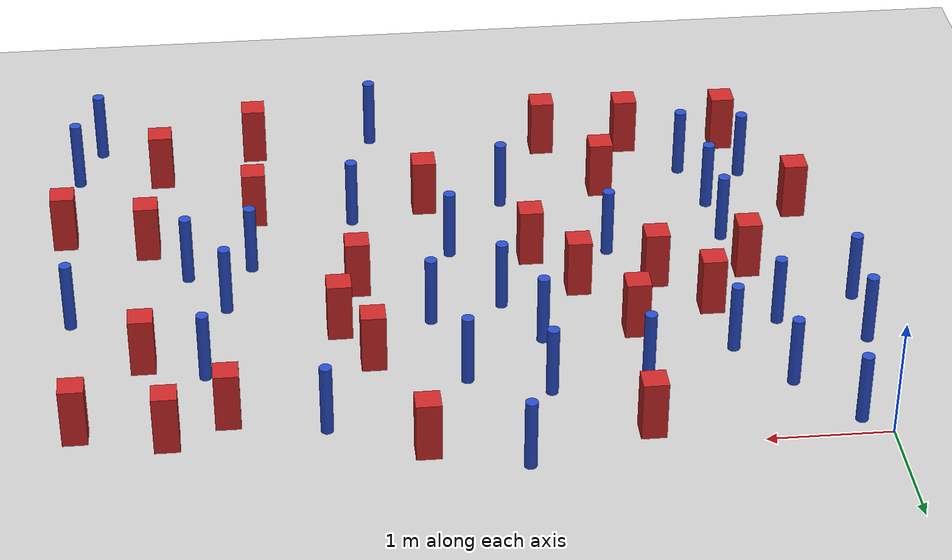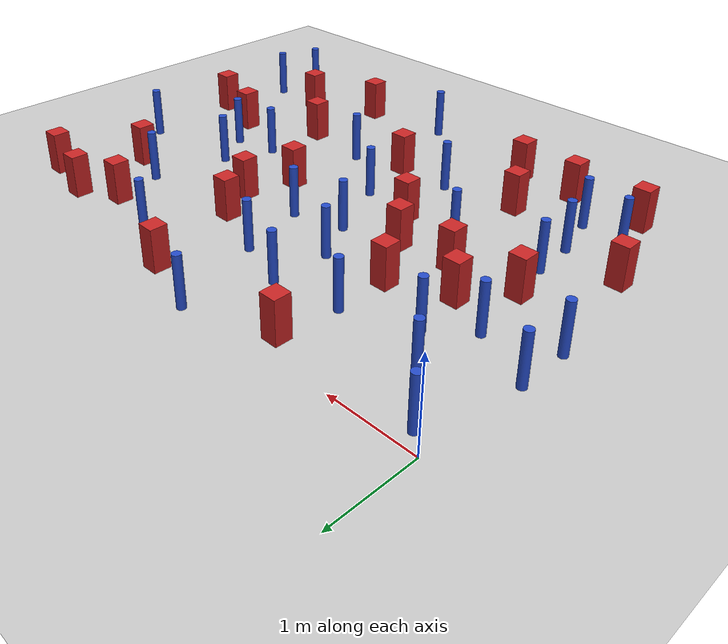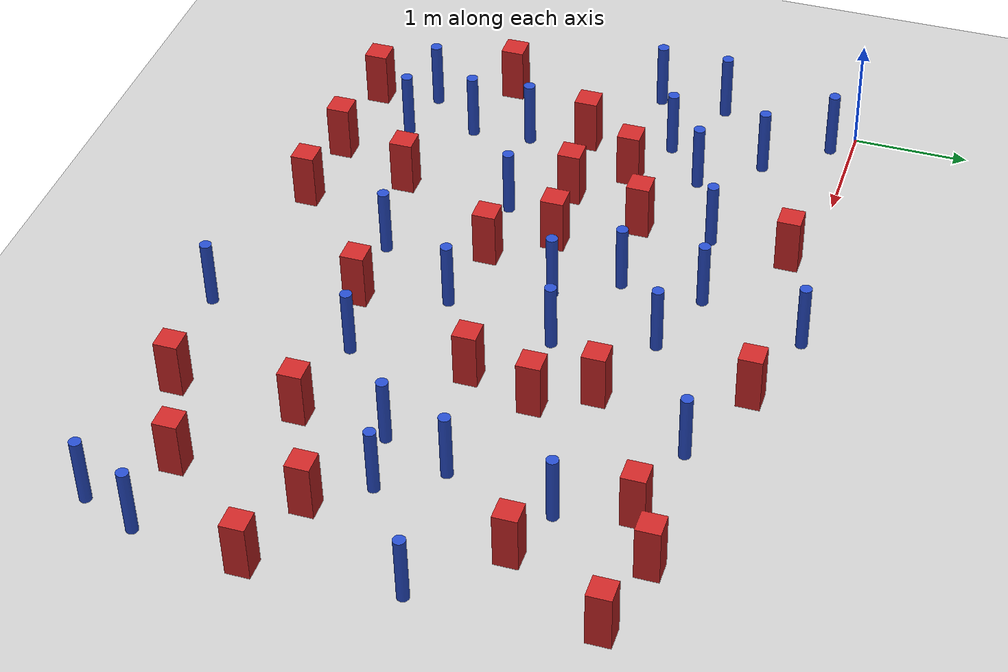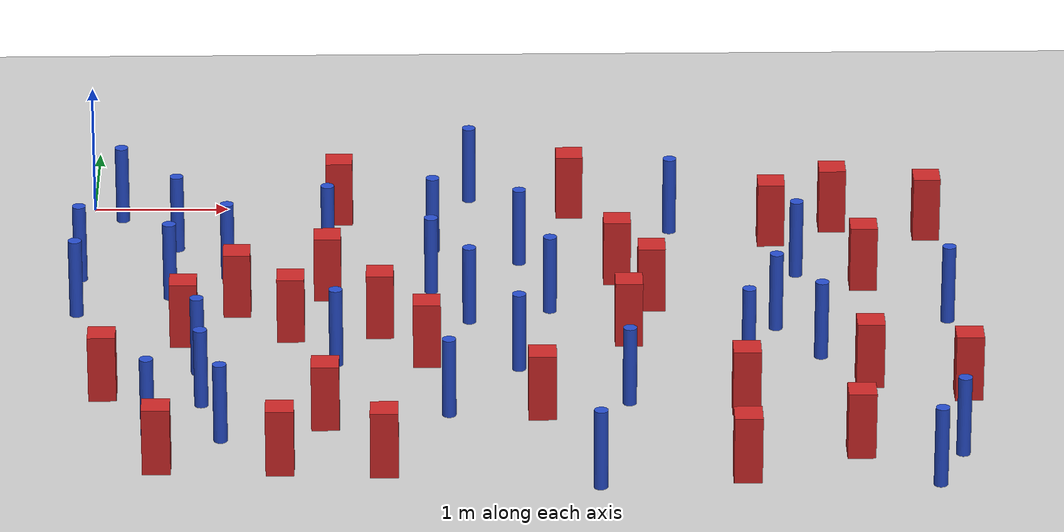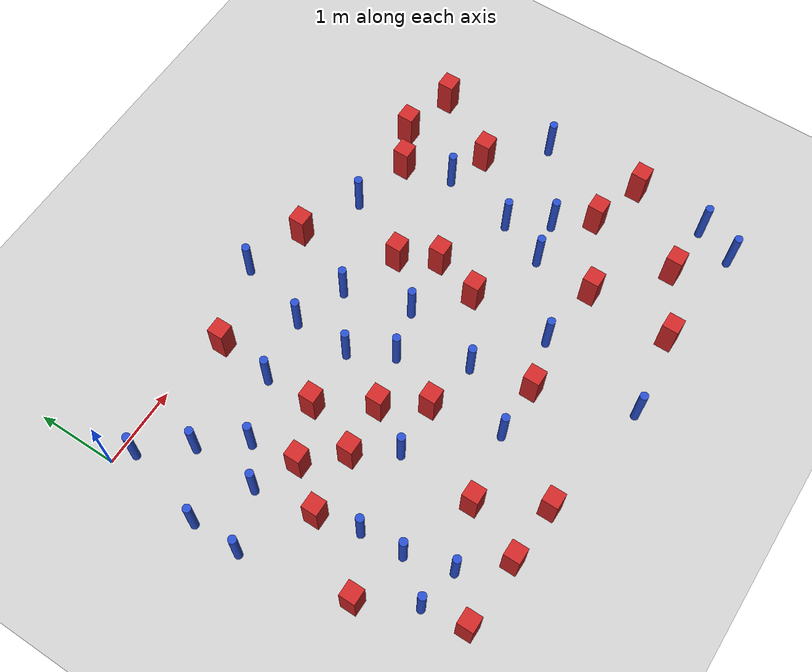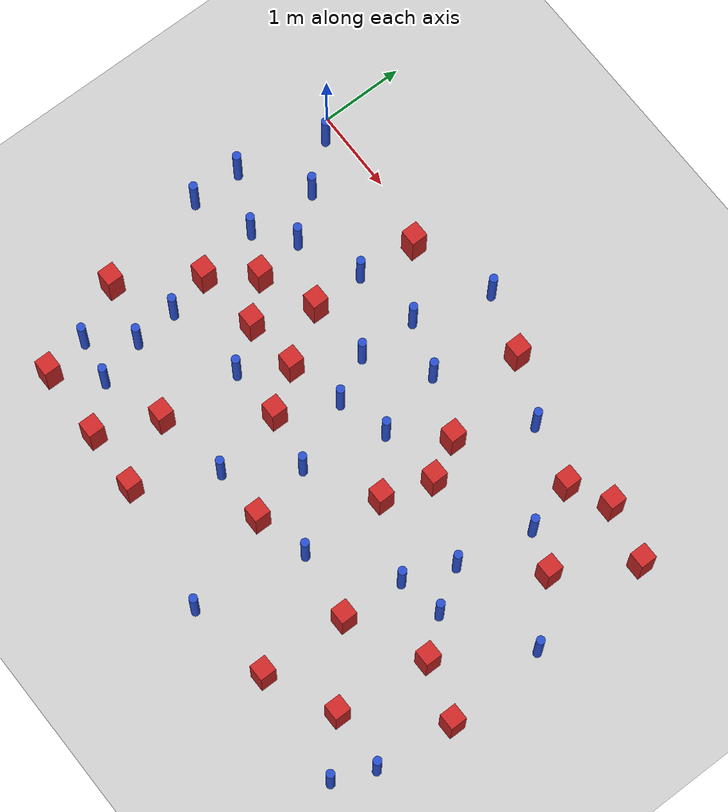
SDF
<sdf version="1.6">
 <world name="default">
  <model name="ground_plane">
   <static>1</static>
   <link name="link">
    <collision name="collision">
     <geometry><plane><normal>0 0 1</normal><size>100 100</size></plane></geometry>
     <surface><friction><ode><mu>100</mu><mu2>50</mu2></ode></friction></surface>
    </collision>
    <visual name="visual">
     <cast_shadows>0</cast_shadows>
     <geometry><plane><normal>0 0 1</normal><size>100 100</size></plane></geometry>
     <material>
      <ambient>1.0 1.0 1.0 1.0</ambient>
      <diffuse>0.8 0.8 0.8 1.0</diffuse>
      <specular>0.01 0.01 0.01 1.000000</specular>
     </material>
    </visual>
   </link>
  </model>
  <model name="NamedLocations">
   <static>true</static>
   <link name="DefaultStart"><pose>8.5 0 0 0 0 3.14</pose></link>
  </model>
  <model name="pole_obstacle7">
   <static>true</static>
   <pose>0.609855262946 -1.5420359486 -9.47619616065e-06 5.49618799738e-07 2.36310414061e-07 -1.55090534801e-07</pose>
   <link name="link">
    <pose>0 0 0.3 0 -0 0</pose>
    <inertial>
     <mass>1</mass>
     <inertia><ixx>0.145833</ixx><ixy>0</ixy><ixz>0</ixz><iyy>0.145833</iyy><iyz>0</iyz><izz>0.125</izz></inertia>
    </inertial>
    <collision name="collision">
     <geometry><cylinder><radius>0.05</radius><length>.6</length></cylinder></geometry>
    </collision>
    <visual name="visual">
     <geometry><cylinder><radius>0.05</radius><length>.6</length></cylinder></geometry>
     <material>
      <script><name>Gazebo/Blue</name><uri>file://media/materials/scripts/gazebo.material</uri></script>
     </material>
    </visual>
   </link>
  </model>
  <model name="pole_obstacle8">
   <static>true</static>
   <pose>4.32344856994 -0.441403326648 -9.47619616065e-06 5.49618799737e-07 2.36310414057e-07 -1.55090534802e-07</pose>
   <link name="link">
    <pose>0 0 0.3 0 -0 0</pose>
    <inertial>
     <mass>1</mass>
     <inertia><ixx>0.145833</ixx><ixy>0</ixy><ixz>0</ixz><iyy>0.145833</iyy><iyz>0</iyz><izz>0.125</izz></inertia>
    </inertial>
    <collision name="collision">
     <geometry><cylinder><radius>0.05</radius><length>.6</length></cylinder></geometry>
    </collision>
    <visual name="visual">
     <geometry><cylinder><radius>0.05</radius><length>.6</length></cylinder></geometry>
     <material>
      <script><name>Gazebo/Blue</name><uri>file://media/materials/scripts/gazebo.material</uri></script>
     </material>
    </visual>
   </link>
  </model>
  <model name="square_post_obstacle31">
   <static>true</static>
   <pose>5.68053538804 -3.01596395985 -6.11067671241e-07 -5.50515727128e-06 -8.79689657224e-07 2.37013304536e-05</pose>
   <link name="link">
    <pose>0 0 0.25 0 -0 0</pose>
    <inertial>
     <mass>100</mass>
     <inertia>
      <ixx>0.166667</ixx>
      <ixy>0</ixy>
      <ixz>0</ixz>
      <iyy>0.166667</iyy>
      <iyz>0</iyz>
      <izz>0.166667</izz>
     </inertia>
    </inertial>
    <collision name="collision"><geometry><box><size>.2 .2 .5</size></box></geometry></collision>
    <visual name="visual">
     <geometry><box><size>.2 .2 .5</size></box></geometry>
     <material>
      <script><name>Gazebo/Red</name><uri>file://media/materials/scripts/gazebo.material</uri></script>
     </material>
    </visual>
   </link>
  </model>
  <model name="square_post_obstacle34">
   <static>true</static>
   <pose>2.4981034423 -2.64403837238 -6.11067671241e-07 -5.50515727128e-06 -8.79689657224e-07 2.37013304536e-05</pose>
   <link name="link">
    <pose>0 0 0.25 0 -0 0</pose>
    <inertial>
     <mass>100</mass>
     <inertia>
      <ixx>0.166667</ixx>
      <ixy>0</ixy>
      <ixz>0</ixz>
      <iyy>0.166667</iyy>
      <iyz>0</iyz>
      <izz>0.166667</izz>
     </inertia>
    </inertial>
    <collision name="collision"><geometry><box><size>.2 .2 .5</size></box></geometry></collision>
    <visual name="visual">
     <geometry><box><size>.2 .2 .5</size></box></geometry>
     <material>
      <script><name>Gazebo/Red</name><uri>file://media/materials/scripts/gazebo.material</uri></script>
     </material>
    </visual>
   </link>
  </model>
  <model name="pole_obstacle30">
   <static>true</static>
   <pose>6.31175992015 -2.01101661606 -9.47619616065e-06 5.49618799737e-07 2.36310414063e-07 -1.55090534798e-07</pose>
   <link name="link">
    <pose>0 0 0.3 0 -0 0</pose>
    <inertial>
     <mass>1</mass>
     <inertia><ixx>0.145833</ixx><ixy>0</ixy><ixz>0</ixz><iyy>0.145833</iyy><iyz>0</iyz><izz>0.125</izz></inertia>
    </inertial>
    <collision name="collision">
     <geometry><cylinder><radius>0.05</radius><length>.6</length></cylinder></geometry>
    </collision>
    <visual name="visual">
     <geometry><cylinder><radius>0.05</radius><length>.6</length></cylinder></geometry>
     <material>
      <script><name>Gazebo/Blue</name><uri>file://media/materials/scripts/gazebo.material</uri></script>
     </material>
    </visual>
   </link>
  </model>
  <model name="square_post_obstacle37">
   <static>true</static>
   <pose>4.73826723417 -4.49922319238 -6.11067671241e-07 -5.50515727128e-06 -8.79689657224e-07 2.37013304536e-05</pose>
   <link name="link">
    <pose>0 0 0.25 0 -0 0</pose>
    <inertial>
     <mass>100</mass>
     <inertia>
      <ixx>0.166667</ixx>
      <ixy>0</ixy>
      <ixz>0</ixz>
      <iyy>0.166667</iyy>
      <iyz>0</iyz>
      <izz>0.166667</izz>
     </inertia>
    </inertial>
    <collision name="collision"><geometry><box><size>.2 .2 .5</size></box></geometry></collision>
    <visual name="visual">
     <geometry><box><size>.2 .2 .5</size></box></geometry>
     <material>
      <script><name>Gazebo/Red</name><uri>file://media/materials/scripts/gazebo.material</uri></script>
     </material>
    </visual>
   </link>
  </model>
  <model name="square_post_obstacle38">
   <static>true</static>
   <pose>0.731146983215 -2.28590044936 -6.11067671241e-07 -5.50515727128e-06 -8.79689657224e-07 2.37013304536e-05</pose>
   <link name="link">
    <pose>0 0 0.25 0 -0 0</pose>
    <inertial>
     <mass>100</mass>
     <inertia>
      <ixx>0.166667</ixx>
      <ixy>0</ixy>
      <ixz>0</ixz>
      <iyy>0.166667</iyy>
      <iyz>0</iyz>
      <izz>0.166667</izz>
     </inertia>
    </inertial>
    <collision name="collision"><geometry><box><size>.2 .2 .5</size></box></geometry></collision>
    <visual name="visual">
     <geometry><box><size>.2 .2 .5</size></box></geometry>
     <material>
      <script><name>Gazebo/Red</name><uri>file://media/materials/scripts/gazebo.material</uri></script>
     </material>
    </visual>
   </link>
  </model>
  <model name="pole_obstacle44">
   <static>true</static>
   <pose>3.18867789257 -0.979405532378 -9.47619616065e-06 5.49618799737e-07 2.36310414076e-07 -1.55090534793e-07</pose>
   <link name="link">
    <pose>0 0 0.3 0 -0 0</pose>
    <inertial>
     <mass>1</mass>
     <inertia><ixx>0.145833</ixx><ixy>0</ixy><ixz>0</ixz><iyy>0.145833</iyy><iyz>0</iyz><izz>0.125</izz></inertia>
    </inertial>
    <collision name="collision">
     <geometry><cylinder><radius>0.05</radius><length>.6</length></cylinder></geometry>
    </collision>
    <visual name="visual">
     <geometry><cylinder><radius>0.05</radius><length>.6</length></cylinder></geometry>
     <material>
      <script><name>Gazebo/Blue</name><uri>file://media/materials/scripts/gazebo.material</uri></script>
     </material>
    </visual>
   </link>
  </model>
  <model name="square_post_obstacle43">
   <static>true</static>
   <pose>5.07543583133 -0.621471444825 -6.11067671241e-07 -5.50515727128e-06 -8.79689657224e-07 2.37013304536e-05</pose>
   <link name="link">
    <pose>0 0 0.25 0 -0 0</pose>
    <inertial>
     <mass>100</mass>
     <inertia>
      <ixx>0.166667</ixx>
      <ixy>0</ixy>
      <ixz>0</ixz>
      <iyy>0.166667</iyy>
      <iyz>0</iyz>
      <izz>0.166667</izz>
     </inertia>
    </inertial>
    <collision name="collision"><geometry><box><size>.2 .2 .5</size></box></geometry></collision>
    <visual name="visual">
     <geometry><box><size>.2 .2 .5</size></box></geometry>
     <material>
      <script><name>Gazebo/Red</name><uri>file://media/materials/scripts/gazebo.material</uri></script>
     </material>
    </visual>
   </link>
  </model>
  <model name="square_post_obstacle44">
   <static>true</static>
   <pose>1.10983998137 -1.78856618563 -6.11067671241e-07 -5.50515727128e-06 -8.79689657224e-07 2.37013304536e-05</pose>
   <link name="link">
    <pose>0 0 0.25 0 -0 0</pose>
    <inertial>
     <mass>100</mass>
     <inertia>
      <ixx>0.166667</ixx>
      <ixy>0</ixy>
      <ixz>0</ixz>
      <iyy>0.166667</iyy>
      <iyz>0</iyz>
      <izz>0.166667</izz>
     </inertia>
    </inertial>
    <collision name="collision"><geometry><box><size>.2 .2 .5</size></box></geometry></collision>
    <visual name="visual">
     <geometry><box><size>.2 .2 .5</size></box></geometry>
     <material>
      <script><name>Gazebo/Red</name><uri>file://media/materials/scripts/gazebo.material</uri></script>
     </material>
    </visual>
   </link>
  </model>
  <model name="square_post_obstacle47">
   <static>true</static>
   <pose>3.31877109479 -3.49733908401 -6.11067671241e-07 -5.50515727128e-06 -8.79689657224e-07 2.37013304536e-05</pose>
   <link name="link">
    <pose>0 0 0.25 0 -0 0</pose>
    <inertial>
     <mass>100</mass>
     <inertia>
      <ixx>0.166667</ixx>
      <ixy>0</ixy>
      <ixz>0</ixz>
      <iyy>0.166667</iyy>
      <iyz>0</iyz>
      <izz>0.166667</izz>
     </inertia>
    </inertial>
    <collision name="collision"><geometry><box><size>.2 .2 .5</size></box></geometry></collision>
    <visual name="visual">
     <geometry><box><size>.2 .2 .5</size></box></geometry>
     <material>
      <script><name>Gazebo/Red</name><uri>file://media/materials/scripts/gazebo.material</uri></script>
     </material>
    </visual>
   </link>
  </model>
  <model name="pole_obstacle46">
   <static>true</static>
   <pose>5.0472588109 -2.11889670049 -9.47619616065e-06 5.49618799738e-07 2.36310414051e-07 -1.55090534805e-07</pose>
   <link name="link">
    <pose>0 0 0.3 0 -0 0</pose>
    <inertial>
     <mass>1</mass>
     <inertia><ixx>0.145833</ixx><ixy>0</ixy><ixz>0</ixz><iyy>0.145833</iyy><iyz>0</iyz><izz>0.125</izz></inertia>
    </inertial>
    <collision name="collision">
     <geometry><cylinder><radius>0.05</radius><length>.6</length></cylinder></geometry>
    </collision>
    <visual name="visual">
     <geometry><cylinder><radius>0.05</radius><length>.6</length></cylinder></geometry>
     <material>
      <script><name>Gazebo/Blue</name><uri>file://media/materials/scripts/gazebo.material</uri></script>
     </material>
    </visual>
   </link>
  </model>
  <model name="square_post_obstacle53">
   <static>true</static>
   <pose>3.96643764946 -2.31050618533 -6.11067671241e-07 -5.50515727128e-06 -8.79689657224e-07 2.37013304536e-05</pose>
   <link name="link">
    <pose>0 0 0.25 0 -0 0</pose>
    <inertial>
     <mass>100</mass>
     <inertia>
      <ixx>0.166667</ixx>
      <ixy>0</ixy>
      <ixz>0</ixz>
      <iyy>0.166667</iyy>
      <iyz>0</iyz>
      <izz>0.166667</izz>
     </inertia>
    </inertial>
    <collision name="collision"><geometry><box><size>.2 .2 .5</size></box></geometry></collision>
    <visual name="visual">
     <geometry><box><size>.2 .2 .5</size></box></geometry>
     <material>
      <script><name>Gazebo/Red</name><uri>file://media/materials/scripts/gazebo.material</uri></script>
     </material>
    </visual>
   </link>
  </model>
  <model name="pole_obstacle55">
   <static>true</static>
   <pose>2.54694682827 -0.761549903889 -9.47619616065e-06 5.49618799738e-07 2.36310414075e-07 -1.55090534793e-07</pose>
   <link name="link">
    <pose>0 0 0.3 0 -0 0</pose>
    <inertial>
     <mass>1</mass>
     <inertia><ixx>0.145833</ixx><ixy>0</ixy><ixz>0</ixz><iyy>0.145833</iyy><iyz>0</iyz><izz>0.125</izz></inertia>
    </inertial>
    <collision name="collision">
     <geometry><cylinder><radius>0.05</radius><length>.6</length></cylinder></geometry>
    </collision>
    <visual name="visual">
     <geometry><cylinder><radius>0.05</radius><length>.6</length></cylinder></geometry>
     <material>
      <script><name>Gazebo/Blue</name><uri>file://media/materials/scripts/gazebo.material</uri></script>
     </material>
    </visual>
   </link>
  </model>
  <model name="pole_obstacle61">
   <static>true</static>
   <pose>1.84176958088 -2.67129326629 -9.47619616065e-06 5.49618799737e-07 2.36310414062e-07 -1.55090534798e-07</pose>
   <link name="link">
    <pose>0 0 0.3 0 -0 0</pose>
    <inertial>
     <mass>1</mass>
     <inertia><ixx>0.145833</ixx><ixy>0</ixy><ixz>0</ixz><iyy>0.145833</iyy><iyz>0</iyz><izz>0.125</izz></inertia>
    </inertial>
    <collision name="collision">
     <geometry><cylinder><radius>0.05</radius><length>.6</length></cylinder></geometry>
    </collision>
    <visual name="visual">
     <geometry><cylinder><radius>0.05</radius><length>.6</length></cylinder></geometry>
     <material>
      <script><name>Gazebo/Blue</name><uri>file://media/materials/scripts/gazebo.material</uri></script>
     </material>
    </visual>
   </link>
  </model>
  <model name="pole_obstacle64">
   <static>true</static>
   <pose>0.213586144083 -0.184721934565 -9.47619616065e-06 5.49618799737e-07 2.36310414051e-07 -1.55090534804e-07</pose>
   <link name="link">
    <pose>0 0 0.3 0 -0 0</pose>
    <inertial>
     <mass>1</mass>
     <inertia><ixx>0.145833</ixx><ixy>0</ixy><ixz>0</ixz><iyy>0.145833</iyy><iyz>0</iyz><izz>0.125</izz></inertia>
    </inertial>
    <collision name="collision">
     <geometry><cylinder><radius>0.05</radius><length>.6</length></cylinder></geometry>
    </collision>
    <visual name="visual">
     <geometry><cylinder><radius>0.05</radius><length>.6</length></cylinder></geometry>
     <material>
      <script><name>Gazebo/Blue</name><uri>file://media/materials/scripts/gazebo.material</uri></script>
     </material>
    </visual>
   </link>
  </model>
  <model name="pole_obstacle66">
   <static>true</static>
   <pose>5.23745996027 -1.21680901563 -9.47619616065e-06 5.49618799738e-07 2.36310414071e-07 -1.55090534796e-07</pose>
   <link name="link">
    <pose>0 0 0.3 0 -0 0</pose>
    <inertial>
     <mass>1</mass>
     <inertia><ixx>0.145833</ixx><ixy>0</ixy><ixz>0</ixz><iyy>0.145833</iyy><iyz>0</iyz><izz>0.125</izz></inertia>
    </inertial>
    <collision name="collision">
     <geometry><cylinder><radius>0.05</radius><length>.6</length></cylinder></geometry>
    </collision>
    <visual name="visual">
     <geometry><cylinder><radius>0.05</radius><length>.6</length></cylinder></geometry>
     <material>
      <script><name>Gazebo/Blue</name><uri>file://media/materials/scripts/gazebo.material</uri></script>
     </material>
    </visual>
   </link>
  </model>
  <model name="square_post_obstacle70">
   <static>true</static>
   <pose>5.55474291789 -4.13239678293 -6.11067671241e-07 -5.50515727128e-06 -8.79689657224e-07 2.37013304536e-05</pose>
   <link name="link">
    <pose>0 0 0.25 0 -0 0</pose>
    <inertial>
     <mass>100</mass>
     <inertia>
      <ixx>0.166667</ixx>
      <ixy>0</ixy>
      <ixz>0</ixz>
      <iyy>0.166667</iyy>
      <iyz>0</iyz>
      <izz>0.166667</izz>
     </inertia>
    </inertial>
    <collision name="collision"><geometry><box><size>.2 .2 .5</size></box></geometry></collision>
    <visual name="visual">
     <geometry><box><size>.2 .2 .5</size></box></geometry>
     <material>
      <script><name>Gazebo/Red</name><uri>file://media/materials/scripts/gazebo.material</uri></script>
     </material>
    </visual>
   </link>
  </model>
  <model name="pole_obstacle67">
   <static>true</static>
   <pose>5.35334237321 -2.59758577537 -9.47619616065e-06 5.49618799738e-07 2.36310414051e-07 -1.55090534805e-07</pose>
   <link name="link">
    <pose>0 0 0.3 0 -0 0</pose>
    <inertial>
     <mass>1</mass>
     <inertia><ixx>0.145833</ixx><ixy>0</ixy><ixz>0</ixz><iyy>0.145833</iyy><iyz>0</iyz><izz>0.125</izz></inertia>
    </inertial>
    <collision name="collision">
     <geometry><cylinder><radius>0.05</radius><length>.6</length></cylinder></geometry>
    </collision>
    <visual name="visual">
     <geometry><cylinder><radius>0.05</radius><length>.6</length></cylinder></geometry>
     <material>
      <script><name>Gazebo/Blue</name><uri>file://media/materials/scripts/gazebo.material</uri></script>
     </material>
    </visual>
   </link>
  </model>
  <model name="pole_obstacle69">
   <static>true</static>
   <pose>4.82320613418 -2.69890092054 -9.47619616065e-06 5.49618799738e-07 2.36310414051e-07 -1.55090534805e-07</pose>
   <link name="link">
    <pose>0 0 0.3 0 -0 0</pose>
    <inertial>
     <mass>1</mass>
     <inertia><ixx>0.145833</ixx><ixy>0</ixy><ixz>0</ixz><iyy>0.145833</iyy><iyz>0</iyz><izz>0.125</izz></inertia>
    </inertial>
    <collision name="collision">
     <geometry><cylinder><radius>0.05</radius><length>.6</length></cylinder></geometry>
    </collision>
    <visual name="visual">
     <geometry><cylinder><radius>0.05</radius><length>.6</length></cylinder></geometry>
     <material>
      <script><name>Gazebo/Blue</name><uri>file://media/materials/scripts/gazebo.material</uri></script>
     </material>
    </visual>
   </link>
  </model>
  <model name="pole_obstacle70">
   <static>true</static>
   <pose>0.882950663695 -3.3201823119 -9.47619616065e-06 5.49618799737e-07 2.36310414066e-07 -1.55090534797e-07</pose>
   <link name="link">
    <pose>0 0 0.3 0 -0 0</pose>
    <inertial>
     <mass>1</mass>
     <inertia><ixx>0.145833</ixx><ixy>0</ixy><ixz>0</ixz><iyy>0.145833</iyy><iyz>0</iyz><izz>0.125</izz></inertia>
    </inertial>
    <collision name="collision">
     <geometry><cylinder><radius>0.05</radius><length>.6</length></cylinder></geometry>
    </collision>
    <visual name="visual">
     <geometry><cylinder><radius>0.05</radius><length>.6</length></cylinder></geometry>
     <material>
      <script><name>Gazebo/Blue</name><uri>file://media/materials/scripts/gazebo.material</uri></script>
     </material>
    </visual>
   </link>
  </model>
  <model name="square_post_obstacle76">
   <static>true</static>
   <pose>5.54541185817 -0.379646621466 -6.11067671241e-07 -5.50515727128e-06 -8.79689657224e-07 2.37013304536e-05</pose>
   <link name="link">
    <pose>0 0 0.25 0 -0 0</pose>
    <inertial>
     <mass>100</mass>
     <inertia>
      <ixx>0.166667</ixx>
      <ixy>0</ixy>
      <ixz>0</ixz>
      <iyy>0.166667</iyy>
      <iyz>0</iyz>
      <izz>0.166667</izz>
     </inertia>
    </inertial>
    <collision name="collision"><geometry><box><size>.2 .2 .5</size></box></geometry></collision>
    <visual name="visual">
     <geometry><box><size>.2 .2 .5</size></box></geometry>
     <material>
      <script><name>Gazebo/Red</name><uri>file://media/materials/scripts/gazebo.material</uri></script>
     </material>
    </visual>
   </link>
  </model>
  <model name="pole_obstacle85">
   <static>true</static>
   <pose>3.40232198169 -1.80441585705 -9.47619616065e-06 5.49618799737e-07 2.36310414072e-07 -1.55090534793e-07</pose>
   <link name="link">
    <pose>0 0 0.3 0 -0 0</pose>
    <inertial>
     <mass>1</mass>
     <inertia><ixx>0.145833</ixx><ixy>0</ixy><ixz>0</ixz><iyy>0.145833</iyy><iyz>0</iyz><izz>0.125</izz></inertia>
    </inertial>
    <collision name="collision">
     <geometry><cylinder><radius>0.05</radius><length>.6</length></cylinder></geometry>
    </collision>
    <visual name="visual">
     <geometry><cylinder><radius>0.05</radius><length>.6</length></cylinder></geometry>
     <material>
      <script><name>Gazebo/Blue</name><uri>file://media/materials/scripts/gazebo.material</uri></script>
     </material>
    </visual>
   </link>
  </model>
  <model name="pole_obstacle94">
   <static>true</static>
   <pose>0.514895870694 -3.78690753344 -9.47619616065e-06 5.49618799737e-07 2.36310414069e-07 -1.55090534796e-07</pose>
   <link name="link">
    <pose>0 0 0.3 0 -0 0</pose>
    <inertial>
     <mass>1</mass>
     <inertia><ixx>0.145833</ixx><ixy>0</ixy><ixz>0</ixz><iyy>0.145833</iyy><iyz>0</iyz><izz>0.125</izz></inertia>
    </inertial>
    <collision name="collision">
     <geometry><cylinder><radius>0.05</radius><length>.6</length></cylinder></geometry>
    </collision>
    <visual name="visual">
     <geometry><cylinder><radius>0.05</radius><length>.6</length></cylinder></geometry>
     <material>
      <script><name>Gazebo/Blue</name><uri>file://media/materials/scripts/gazebo.material</uri></script>
     </material>
    </visual>
   </link>
  </model>
  <model name="square_post_obstacle85">
   <static>true</static>
   <pose>5.72316089182 -1.39629750474 -6.11067671241e-07 -5.50515727128e-06 -8.79689657224e-07 2.37013304536e-05</pose>
   <link name="link">
    <pose>0 0 0.25 0 -0 0</pose>
    <inertial>
     <mass>100</mass>
     <inertia>
      <ixx>0.166667</ixx>
      <ixy>0</ixy>
      <ixz>0</ixz>
      <iyy>0.166667</iyy>
      <iyz>0</iyz>
      <izz>0.166667</izz>
     </inertia>
    </inertial>
    <collision name="collision"><geometry><box><size>.2 .2 .5</size></box></geometry></collision>
    <visual name="visual">
     <geometry><box><size>.2 .2 .5</size></box></geometry>
     <material>
      <script><name>Gazebo/Red</name><uri>file://media/materials/scripts/gazebo.material</uri></script>
     </material>
    </visual>
   </link>
  </model>
  <model name="pole_obstacle99">
   <static>true</static>
   <pose>3.94563730995 -3.33146510453 -9.47619616065e-06 5.49618799737e-07 2.36310414051e-07 -1.55090534807e-07</pose>
   <link name="link">
    <pose>0 0 0.3 0 -0 0</pose>
    <inertial>
     <mass>1</mass>
     <inertia><ixx>0.145833</ixx><ixy>0</ixy><ixz>0</ixz><iyy>0.145833</iyy><iyz>0</iyz><izz>0.125</izz></inertia>
    </inertial>
    <collision name="collision">
     <geometry><cylinder><radius>0.05</radius><length>.6</length></cylinder></geometry>
    </collision>
    <visual name="visual">
     <geometry><cylinder><radius>0.05</radius><length>.6</length></cylinder></geometry>
     <material>
      <script><name>Gazebo/Blue</name><uri>file://media/materials/scripts/gazebo.material</uri></script>
     </material>
    </visual>
   </link>
  </model>
  <model name="pole_obstacle108">
   <static>true</static>
   <pose>2.65423597626 -3.49902400639 -9.47619616065e-06 5.49618799737e-07 2.36310414051e-07 -1.55090534807e-07</pose>
   <link name="link">
    <pose>0 0 0.3 0 -0 0</pose>
    <inertial>
     <mass>1</mass>
     <inertia><ixx>0.145833</ixx><ixy>0</ixy><ixz>0</ixz><iyy>0.145833</iyy><iyz>0</iyz><izz>0.125</izz></inertia>
    </inertial>
    <collision name="collision">
     <geometry><cylinder><radius>0.05</radius><length>.6</length></cylinder></geometry>
    </collision>
    <visual name="visual">
     <geometry><cylinder><radius>0.05</radius><length>.6</length></cylinder></geometry>
     <material>
      <script><name>Gazebo/Blue</name><uri>file://media/materials/scripts/gazebo.material</uri></script>
     </material>
    </visual>
   </link>
  </model>
  <model name="pole_obstacle115">
   <static>true</static>
   <pose>2.53332639494 -1.46124045778 -9.47619616065e-06 5.49618799737e-07 2.36310414072e-07 -1.55090534793e-07</pose>
   <link name="link">
    <pose>0 0 0.3 0 -0 0</pose>
    <inertial>
     <mass>1</mass>
     <inertia><ixx>0.145833</ixx><ixy>0</ixy><ixz>0</ixz><iyy>0.145833</iyy><iyz>0</iyz><izz>0.125</izz></inertia>
    </inertial>
    <collision name="collision">
     <geometry><cylinder><radius>0.05</radius><length>.6</length></cylinder></geometry>
    </collision>
    <visual name="visual">
     <geometry><cylinder><radius>0.05</radius><length>.6</length></cylinder></geometry>
     <material>
      <script><name>Gazebo/Blue</name><uri>file://media/materials/scripts/gazebo.material</uri></script>
     </material>
    </visual>
   </link>
  </model>
  <model name="square_post_obstacle105">
   <static>true</static>
   <pose>3.90747477194 -1.27197787216 -6.11067671241e-07 -5.50515727128e-06 -8.79689657224e-07 2.37013304536e-05</pose>
   <link name="link">
    <pose>0 0 0.25 0 -0 0</pose>
    <inertial>
     <mass>100</mass>
     <inertia>
      <ixx>0.166667</ixx>
      <ixy>0</ixy>
      <ixz>0</ixz>
      <iyy>0.166667</iyy>
      <iyz>0</iyz>
      <izz>0.166667</izz>
     </inertia>
    </inertial>
    <collision name="collision"><geometry><box><size>.2 .2 .5</size></box></geometry></collision>
    <visual name="visual">
     <geometry><box><size>.2 .2 .5</size></box></geometry>
     <material>
      <script><name>Gazebo/Red</name><uri>file://media/materials/scripts/gazebo.material</uri></script>
     </material>
    </visual>
   </link>
  </model>
  <model name="pole_obstacle124">
   <static>true</static>
   <pose>-0.0700854941592 -1.82031008264 -9.47619616065e-06 5.49618799737e-07 2.36310414058e-07 -1.55090534803e-07</pose>
   <link name="link">
    <pose>0 0 0.3 0 -0 0</pose>
    <inertial>
     <mass>1</mass>
     <inertia><ixx>0.145833</ixx><ixy>0</ixy><ixz>0</ixz><iyy>0.145833</iyy><iyz>0</iyz><izz>0.125</izz></inertia>
    </inertial>
    <collision name="collision">
     <geometry><cylinder><radius>0.05</radius><length>.6</length></cylinder></geometry>
    </collision>
    <visual name="visual">
     <geometry><cylinder><radius>0.05</radius><length>.6</length></cylinder></geometry>
     <material>
      <script><name>Gazebo/Blue</name><uri>file://media/materials/scripts/gazebo.material</uri></script>
     </material>
    </visual>
   </link>
  </model>
  <model name="pole_obstacle132">
   <static>true</static>
   <pose>1.76644931716 -0.88970447265 -9.47619616065e-06 5.49618799737e-07 2.36310414065e-07 -1.55090534798e-07</pose>
   <link name="link">
    <pose>0 0 0.3 0 -0 0</pose>
    <inertial>
     <mass>1</mass>
     <inertia><ixx>0.145833</ixx><ixy>0</ixy><ixz>0</ixz><iyy>0.145833</iyy><iyz>0</iyz><izz>0.125</izz></inertia>
    </inertial>
    <collision name="collision">
     <geometry><cylinder><radius>0.05</radius><length>.6</length></cylinder></geometry>
    </collision>
    <visual name="visual">
     <geometry><cylinder><radius>0.05</radius><length>.6</length></cylinder></geometry>
     <material>
      <script><name>Gazebo/Blue</name><uri>file://media/materials/scripts/gazebo.material</uri></script>
     </material>
    </visual>
   </link>
  </model>
  <model name="pole_obstacle133">
   <static>true</static>
   <pose>3.16259130534 -2.76561216975 -9.47619616065e-06 5.49618799737e-07 2.36310414051e-07 -1.55090534807e-07</pose>
   <link name="link">
    <pose>0 0 0.3 0 -0 0</pose>
    <inertial>
     <mass>1</mass>
     <inertia><ixx>0.145833</ixx><ixy>0</ixy><ixz>0</ixz><iyy>0.145833</iyy><iyz>0</iyz><izz>0.125</izz></inertia>
    </inertial>
    <collision name="collision">
     <geometry><cylinder><radius>0.05</radius><length>.6</length></cylinder></geometry>
    </collision>
    <visual name="visual">
     <geometry><cylinder><radius>0.05</radius><length>.6</length></cylinder></geometry>
     <material>
      <script><name>Gazebo/Blue</name><uri>file://media/materials/scripts/gazebo.material</uri></script>
     </material>
    </visual>
   </link>
  </model>
  <model name="square_post_obstacle117">
   <static>true</static>
   <pose>1.77452383037 -3.64227834836 -6.11067671241e-07 -5.50515727128e-06 -8.79689657224e-07 2.37013304536e-05</pose>
   <link name="link">
    <pose>0 0 0.25 0 -0 0</pose>
    <inertial>
     <mass>100</mass>
     <inertia>
      <ixx>0.166667</ixx>
      <ixy>0</ixy>
      <ixz>0</ixz>
      <iyy>0.166667</iyy>
      <iyz>0</iyz>
      <izz>0.166667</izz>
     </inertia>
    </inertial>
    <collision name="collision"><geometry><box><size>.2 .2 .5</size></box></geometry></collision>
    <visual name="visual">
     <geometry><box><size>.2 .2 .5</size></box></geometry>
     <material>
      <script><name>Gazebo/Red</name><uri>file://media/materials/scripts/gazebo.material</uri></script>
     </material>
    </visual>
   </link>
  </model>
  <model name="square_post_obstacle119">
   <static>true</static>
   <pose>4.77465579167 -3.4472736209 -6.11067671241e-07 -5.50515727128e-06 -8.79689657224e-07 2.37013304536e-05</pose>
   <link name="link">
    <pose>0 0 0.25 0 -0 0</pose>
    <inertial>
     <mass>100</mass>
     <inertia>
      <ixx>0.166667</ixx>
      <ixy>0</ixy>
      <ixz>0</ixz>
      <iyy>0.166667</iyy>
      <iyz>0</iyz>
      <izz>0.166667</izz>
     </inertia>
    </inertial>
    <collision name="collision"><geometry><box><size>.2 .2 .5</size></box></geometry></collision>
    <visual name="visual">
     <geometry><box><size>.2 .2 .5</size></box></geometry>
     <material>
      <script><name>Gazebo/Red</name><uri>file://media/materials/scripts/gazebo.material</uri></script>
     </material>
    </visual>
   </link>
  </model>
  <model name="pole_obstacle139">
   <static>true</static>
   <pose>0.845217079267 -2.79875273748 -9.47619616065e-06 5.49618799737e-07 2.36310414066e-07 -1.55090534797e-07</pose>
   <link name="link">
    <pose>0 0 0.3 0 -0 0</pose>
    <inertial>
     <mass>1</mass>
     <inertia><ixx>0.145833</ixx><ixy>0</ixy><ixz>0</ixz><iyy>0.145833</iyy><iyz>0</iyz><izz>0.125</izz></inertia>
    </inertial>
    <collision name="collision">
     <geometry><cylinder><radius>0.05</radius><length>.6</length></cylinder></geometry>
    </collision>
    <visual name="visual">
     <geometry><cylinder><radius>0.05</radius><length>.6</length></cylinder></geometry>
     <material>
      <script><name>Gazebo/Blue</name><uri>file://media/materials/scripts/gazebo.material</uri></script>
     </material>
    </visual>
   </link>
  </model>
  <model name="pole_obstacle141">
   <static>true</static>
   <pose>3.70641573728 -4.64131132682 -9.47619616065e-06 5.49618799738e-07 2.3631041406e-07 -1.55090534801e-07</pose>
   <link name="link">
    <pose>0 0 0.3 0 -0 0</pose>
    <inertial>
     <mass>1</mass>
     <inertia><ixx>0.145833</ixx><ixy>0</ixy><ixz>0</ixz><iyy>0.145833</iyy><iyz>0</iyz><izz>0.125</izz></inertia>
    </inertial>
    <collision name="collision">
     <geometry><cylinder><radius>0.05</radius><length>.6</length></cylinder></geometry>
    </collision>
    <visual name="visual">
     <geometry><cylinder><radius>0.05</radius><length>.6</length></cylinder></geometry>
     <material>
      <script><name>Gazebo/Blue</name><uri>file://media/materials/scripts/gazebo.material</uri></script>
     </material>
    </visual>
   </link>
  </model>
  <model name="square_post_obstacle130">
   <static>true</static>
   <pose>3.57691665199 -0.105702497421 -6.11067671241e-07 -5.50515727128e-06 -8.79689657224e-07 2.37013304536e-05</pose>
   <link name="link">
    <pose>0 0 0.25 0 -0 0</pose>
    <inertial>
     <mass>100</mass>
     <inertia>
      <ixx>0.166667</ixx>
      <ixy>0</ixy>
      <ixz>0</ixz>
      <iyy>0.166667</iyy>
      <iyz>0</iyz>
      <izz>0.166667</izz>
     </inertia>
    </inertial>
    <collision name="collision"><geometry><box><size>.2 .2 .5</size></box></geometry></collision>
    <visual name="visual">
     <geometry><box><size>.2 .2 .5</size></box></geometry>
     <material>
      <script><name>Gazebo/Red</name><uri>file://media/materials/scripts/gazebo.material</uri></script>
     </material>
    </visual>
   </link>
  </model>
  <model name="square_post_obstacle134">
   <static>true</static>
   <pose>1.4626241378 -4.34460492852 -6.11067671241e-07 -5.50515727128e-06 -8.79689657224e-07 2.37013304536e-05</pose>
   <link name="link">
    <pose>0 0 0.25 0 -0 0</pose>
    <inertial>
     <mass>100</mass>
     <inertia>
      <ixx>0.166667</ixx>
      <ixy>0</ixy>
      <ixz>0</ixz>
      <iyy>0.166667</iyy>
      <iyz>0</iyz>
      <izz>0.166667</izz>
     </inertia>
    </inertial>
    <collision name="collision"><geometry><box><size>.2 .2 .5</size></box></geometry></collision>
    <visual name="visual">
     <geometry><box><size>.2 .2 .5</size></box></geometry>
     <material>
      <script><name>Gazebo/Red</name><uri>file://media/materials/scripts/gazebo.material</uri></script>
     </material>
    </visual>
   </link>
  </model>
  <model name="pole_obstacle145">
   <static>true</static>
   <pose>6.08377825905 -4.63491206832 -9.47619616065e-06 5.49618799737e-07 2.36310414037e-07 -1.55090534814e-07</pose>
   <link name="link">
    <pose>0 0 0.3 0 -0 0</pose>
    <inertial>
     <mass>1</mass>
     <inertia><ixx>0.145833</ixx><ixy>0</ixy><ixz>0</ixz><iyy>0.145833</iyy><iyz>0</iyz><izz>0.125</izz></inertia>
    </inertial>
    <collision name="collision">
     <geometry><cylinder><radius>0.05</radius><length>.6</length></cylinder></geometry>
    </collision>
    <visual name="visual">
     <geometry><cylinder><radius>0.05</radius><length>.6</length></cylinder></geometry>
     <material>
      <script><name>Gazebo/Blue</name><uri>file://media/materials/scripts/gazebo.material</uri></script>
     </material>
    </visual>
   </link>
  </model>
  <model name="pole_obstacle153">
   <static>true</static>
   <pose>2.82440432865 0.137287715491 -9.47619616065e-06 5.49618799737e-07 2.36310414074e-07 -1.55090534793e-07</pose>
   <link name="link">
    <pose>0 0 0.3 0 -0 0</pose>
    <inertial>
     <mass>1</mass>
     <inertia><ixx>0.145833</ixx><ixy>0</ixy><ixz>0</ixz><iyy>0.145833</iyy><iyz>0</iyz><izz>0.125</izz></inertia>
    </inertial>
    <collision name="collision">
     <geometry><cylinder><radius>0.05</radius><length>.6</length></cylinder></geometry>
    </collision>
    <visual name="visual">
     <geometry><cylinder><radius>0.05</radius><length>.6</length></cylinder></geometry>
     <material>
      <script><name>Gazebo/Blue</name><uri>file://media/materials/scripts/gazebo.material</uri></script>
     </material>
    </visual>
   </link>
  </model>
  <model name="square_post_obstacle144">
   <static>true</static>
   <pose>1.7698727152 -1.51898836863 -6.11067671241e-07 -5.50515727128e-06 -8.79689657224e-07 2.37013304536e-05</pose>
   <link name="link">
    <pose>0 0 0.25 0 -0 0</pose>
    <inertial>
     <mass>100</mass>
     <inertia>
      <ixx>0.166667</ixx>
      <ixy>0</ixy>
      <ixz>0</ixz>
      <iyy>0.166667</iyy>
      <iyz>0</iyz>
      <izz>0.166667</izz>
     </inertia>
    </inertial>
    <collision name="collision"><geometry><box><size>.2 .2 .5</size></box></geometry></collision>
    <visual name="visual">
     <geometry><box><size>.2 .2 .5</size></box></geometry>
     <material>
      <script><name>Gazebo/Red</name><uri>file://media/materials/scripts/gazebo.material</uri></script>
     </material>
    </visual>
   </link>
  </model>
  <model name="pole_obstacle157">
   <static>true</static>
   <pose>1.02674244574 -1.2007215878 -9.47619616065e-06 5.49618799738e-07 2.36310414068e-07 -1.55090534794e-07</pose>
   <link name="link">
    <pose>0 0 0.3 0 -0 0</pose>
    <inertial>
     <mass>1</mass>
     <inertia><ixx>0.145833</ixx><ixy>0</ixy><ixz>0</ixz><iyy>0.145833</iyy><iyz>0</iyz><izz>0.125</izz></inertia>
    </inertial>
    <collision name="collision">
     <geometry><cylinder><radius>0.05</radius><length>.6</length></cylinder></geometry>
    </collision>
    <visual name="visual">
     <geometry><cylinder><radius>0.05</radius><length>.6</length></cylinder></geometry>
     <material>
      <script><name>Gazebo/Blue</name><uri>file://media/materials/scripts/gazebo.material</uri></script>
     </material>
    </visual>
   </link>
  </model>
  <model name="square_post_obstacle159">
   <static>true</static>
   <pose>2.19546491063 -4.38269663359 -6.11067671241e-07 -5.50515727128e-06 -8.79689657224e-07 2.37013304536e-05</pose>
   <link name="link">
    <pose>0 0 0.25 0 -0 0</pose>
    <inertial>
     <mass>100</mass>
     <inertia>
      <ixx>0.166667</ixx>
      <ixy>0</ixy>
      <ixz>0</ixz>
      <iyy>0.166667</iyy>
      <iyz>0</iyz>
      <izz>0.166667</izz>
     </inertia>
    </inertial>
    <collision name="collision"><geometry><box><size>.2 .2 .5</size></box></geometry></collision>
    <visual name="visual">
     <geometry><box><size>.2 .2 .5</size></box></geometry>
     <material>
      <script><name>Gazebo/Red</name><uri>file://media/materials/scripts/gazebo.material</uri></script>
     </material>
    </visual>
   </link>
  </model>
  <model name="pole_obstacle174">
   <static>true</static>
   <pose>6.27426983314 -4.16367614162 -9.47619616065e-06 5.49618799737e-07 2.36310414037e-07 -1.55090534814e-07</pose>
   <link name="link">
    <pose>0 0 0.3 0 -0 0</pose>
    <inertial>
     <mass>1</mass>
     <inertia><ixx>0.145833</ixx><ixy>0</ixy><ixz>0</ixz><iyy>0.145833</iyy><iyz>0</iyz><izz>0.125</izz></inertia>
    </inertial>
    <collision name="collision">
     <geometry><cylinder><radius>0.05</radius><length>.6</length></cylinder></geometry>
    </collision>
    <visual name="visual">
     <geometry><cylinder><radius>0.05</radius><length>.6</length></cylinder></geometry>
     <material>
      <script><name>Gazebo/Blue</name><uri>file://media/materials/scripts/gazebo.material</uri></script>
     </material>
    </visual>
   </link>
  </model>
  <model name="pole_obstacle182">
   <static>true</static>
   <pose>-0.0637318223793 -1.22047619288 -9.47619616065e-06 5.49618799737e-07 2.36310414058e-07 -1.55090534803e-07</pose>
   <link name="link">
    <pose>0 0 0.3 0 -0 0</pose>
    <inertial>
     <mass>1</mass>
     <inertia><ixx>0.145833</ixx><ixy>0</ixy><ixz>0</ixz><iyy>0.145833</iyy><iyz>0</iyz><izz>0.125</izz></inertia>
    </inertial>
    <collision name="collision">
     <geometry><cylinder><radius>0.05</radius><length>.6</length></cylinder></geometry>
    </collision>
    <visual name="visual">
     <geometry><cylinder><radius>0.05</radius><length>.6</length></cylinder></geometry>
     <material>
      <script><name>Gazebo/Blue</name><uri>file://media/materials/scripts/gazebo.material</uri></script>
     </material>
    </visual>
   </link>
  </model>
  <model name="square_post_obstacle176">
   <static>true</static>
   <pose>4.14931520934 -1.72591377157 -6.11067671241e-07 -5.50515727128e-06 -8.79689657224e-07 2.37013304536e-05</pose>
   <link name="link">
    <pose>0 0 0.25 0 -0 0</pose>
    <inertial>
     <mass>100</mass>
     <inertia>
      <ixx>0.166667</ixx>
      <ixy>0</ixy>
      <ixz>0</ixz>
      <iyy>0.166667</iyy>
      <iyz>0</iyz>
      <izz>0.166667</izz>
     </inertia>
    </inertial>
    <collision name="collision"><geometry><box><size>.2 .2 .5</size></box></geometry></collision>
    <visual name="visual">
     <geometry><box><size>.2 .2 .5</size></box></geometry>
     <material>
      <script><name>Gazebo/Red</name><uri>file://media/materials/scripts/gazebo.material</uri></script>
     </material>
    </visual>
   </link>
  </model>
  <model name="square_post_obstacle181">
   <static>true</static>
   <pose>1.50933006798 -2.20779311984 -6.11067671241e-07 -5.50515727128e-06 -8.79689657224e-07 2.37013304536e-05</pose>
   <link name="link">
    <pose>0 0 0.25 0 -0 0</pose>
    <inertial>
     <mass>100</mass>
     <inertia>
      <ixx>0.166667</ixx>
      <ixy>0</ixy>
      <ixz>0</ixz>
      <iyy>0.166667</iyy>
      <iyz>0</iyz>
      <izz>0.166667</izz>
     </inertia>
    </inertial>
    <collision name="collision"><geometry><box><size>.2 .2 .5</size></box></geometry></collision>
    <visual name="visual">
     <geometry><box><size>.2 .2 .5</size></box></geometry>
     <material>
      <script><name>Gazebo/Red</name><uri>file://media/materials/scripts/gazebo.material</uri></script>
     </material>
    </visual>
   </link>
  </model>
  <model name="pole_obstacle191">
   <static>true</static>
   <pose>1.03396747744 -3.88186664352 -9.47619616065e-06 5.49618799737e-07 2.36310414062e-07 -1.55090534798e-07</pose>
   <link name="link">
    <pose>0 0 0.3 0 -0 0</pose>
    <inertial>
     <mass>1</mass>
     <inertia><ixx>0.145833</ixx><ixy>0</ixy><ixz>0</ixz><iyy>0.145833</iyy><iyz>0</iyz><izz>0.125</izz></inertia>
    </inertial>
    <collision name="collision">
     <geometry><cylinder><radius>0.05</radius><length>.6</length></cylinder></geometry>
    </collision>
    <visual name="visual">
     <geometry><cylinder><radius>0.05</radius><length>.6</length></cylinder></geometry>
     <material>
      <script><name>Gazebo/Blue</name><uri>file://media/materials/scripts/gazebo.material</uri></script>
     </material>
    </visual>
   </link>
  </model>
  <model name="square_post_obstacle187">
   <static>true</static>
   <pose>0.595652509675 -4.31163041037 -6.11067671241e-07 -5.50515727128e-06 -8.79689657224e-07 2.37013304536e-05</pose>
   <link name="link">
    <pose>0 0 0.25 0 -0 0</pose>
    <inertial>
     <mass>100</mass>
     <inertia>
      <ixx>0.166667</ixx>
      <ixy>0</ixy>
      <ixz>0</ixz>
      <iyy>0.166667</iyy>
      <iyz>0</iyz>
      <izz>0.166667</izz>
     </inertia>
    </inertial>
    <collision name="collision"><geometry><box><size>.2 .2 .5</size></box></geometry></collision>
    <visual name="visual">
     <geometry><box><size>.2 .2 .5</size></box></geometry>
     <material>
      <script><name>Gazebo/Red</name><uri>file://media/materials/scripts/gazebo.material</uri></script>
     </material>
    </visual>
   </link>
  </model>
  <model name="pole_obstacle201">
   <static>true</static>
   <pose>0.642057597253 -0.706950209479 -9.47619616065e-06 5.49618799737e-07 2.36310414058e-07 -1.55090534802e-07</pose>
   <link name="link">
    <pose>0 0 0.3 0 -0 0</pose>
    <inertial>
     <mass>1</mass>
     <inertia><ixx>0.145833</ixx><ixy>0</ixy><ixz>0</ixz><iyy>0.145833</iyy><iyz>0</iyz><izz>0.125</izz></inertia>
    </inertial>
    <collision name="collision">
     <geometry><cylinder><radius>0.05</radius><length>.6</length></cylinder></geometry>
    </collision>
    <visual name="visual">
     <geometry><cylinder><radius>0.05</radius><length>.6</length></cylinder></geometry>
     <material>
      <script><name>Gazebo/Blue</name><uri>file://media/materials/scripts/gazebo.material</uri></script>
     </material>
    </visual>
   </link>
  </model>
  <model name="pole_obstacle203">
   <static>true</static>
   <pose>2.8107412072 -1.97721564827 -9.47619616065e-06 5.49618799737e-07 2.36310414067e-07 -1.55090534796e-07</pose>
   <link name="link">
    <pose>0 0 0.3 0 -0 0</pose>
    <inertial>
     <mass>1</mass>
     <inertia><ixx>0.145833</ixx><ixy>0</ixy><ixz>0</ixz><iyy>0.145833</iyy><iyz>0</iyz><izz>0.125</izz></inertia>
    </inertial>
    <collision name="collision">
     <geometry><cylinder><radius>0.05</radius><length>.6</length></cylinder></geometry>
    </collision>
    <visual name="visual">
     <geometry><cylinder><radius>0.05</radius><length>.6</length></cylinder></geometry>
     <material>
      <script><name>Gazebo/Blue</name><uri>file://media/materials/scripts/gazebo.material</uri></script>
     </material>
    </visual>
   </link>
  </model>
  <model name="square_post_obstacle205">
   <static>true</static>
   <pose>6.37584420369 -3.23260258809 -6.11067671241e-07 -5.50515727128e-06 -8.79689657224e-07 2.37013304536e-05</pose>
   <link name="link">
    <pose>0 0 0.25 0 -0 0</pose>
    <inertial>
     <mass>100</mass>
     <inertia>
      <ixx>0.166667</ixx>
      <ixy>0</ixy>
      <ixz>0</ixz>
      <iyy>0.166667</iyy>
      <iyz>0</iyz>
      <izz>0.166667</izz>
     </inertia>
    </inertial>
    <collision name="collision"><geometry><box><size>.2 .2 .5</size></box></geometry></collision>
    <visual name="visual">
     <geometry><box><size>.2 .2 .5</size></box></geometry>
     <material>
      <script><name>Gazebo/Red</name><uri>file://media/materials/scripts/gazebo.material</uri></script>
     </material>
    </visual>
   </link>
  </model>
  <model name="square_post_obstacle207">
   <static>true</static>
   <pose>1.84603589872 -0.197994587512 -6.11067671241e-07 -5.50515727128e-06 -8.79689657224e-07 2.37013304536e-05</pose>
   <link name="link">
    <pose>0 0 0.25 0 -0 0</pose>
    <inertial>
     <mass>100</mass>
     <inertia>
      <ixx>0.166667</ixx>
      <ixy>0</ixy>
      <ixz>0</ixz>
      <iyy>0.166667</iyy>
      <iyz>0</iyz>
      <izz>0.166667</izz>
     </inertia>
    </inertial>
    <collision name="collision"><geometry><box><size>.2 .2 .5</size></box></geometry></collision>
    <visual name="visual">
     <geometry><box><size>.2 .2 .5</size></box></geometry>
     <material>
      <script><name>Gazebo/Red</name><uri>file://media/materials/scripts/gazebo.material</uri></script>
     </material>
    </visual>
   </link>
  </model>
  <model name="square_post_obstacle208">
   <static>true</static>
   <pose>6.24307531777 -0.538603775212 -6.11067671241e-07 -5.50515727128e-06 -8.79689657224e-07 2.37013304536e-05</pose>
   <link name="link">
    <pose>0 0 0.25 0 -0 0</pose>
    <inertial>
     <mass>100</mass>
     <inertia>
      <ixx>0.166667</ixx>
      <ixy>0</ixy>
      <ixz>0</ixz>
      <iyy>0.166667</iyy>
      <iyz>0</iyz>
      <izz>0.166667</izz>
     </inertia>
    </inertial>
    <collision name="collision"><geometry><box><size>.2 .2 .5</size></box></geometry></collision>
    <visual name="visual">
     <geometry><box><size>.2 .2 .5</size></box></geometry>
     <material>
      <script><name>Gazebo/Red</name><uri>file://media/materials/scripts/gazebo.material</uri></script>
     </material>
    </visual>
   </link>
  </model>
  <model name="square_post_obstacle210">
   <static>true</static>
   <pose>0.173423792289 -3.14967440416 -6.11067671241e-07 -5.50515727128e-06 -8.79689657224e-07 2.37013304536e-05</pose>
   <link name="link">
    <pose>0 0 0.25 0 -0 0</pose>
    <inertial>
     <mass>100</mass>
     <inertia>
      <ixx>0.166667</ixx>
      <ixy>0</ixy>
      <ixz>0</ixz>
      <iyy>0.166667</iyy>
      <iyz>0</iyz>
      <izz>0.166667</izz>
     </inertia>
    </inertial>
    <collision name="collision"><geometry><box><size>.2 .2 .5</size></box></geometry></collision>
    <visual name="visual">
     <geometry><box><size>.2 .2 .5</size></box></geometry>
     <material>
      <script><name>Gazebo/Red</name><uri>file://media/materials/scripts/gazebo.material</uri></script>
     </material>
    </visual>
   </link>
  </model>
  <model name="square_post_obstacle219">
   <static>true</static>
   <pose>2.1587399502 -2.15545002312 -6.11067671241e-07 -5.50515727128e-06 -8.79689657224e-07 2.37013304536e-05</pose>
   <link name="link">
    <pose>0 0 0.25 0 -0 0</pose>
    <inertial>
     <mass>100</mass>
     <inertia>
      <ixx>0.166667</ixx>
      <ixy>0</ixy>
      <ixz>0</ixz>
      <iyy>0.166667</iyy>
      <iyz>0</iyz>
      <izz>0.166667</izz>
     </inertia>
    </inertial>
    <collision name="collision"><geometry><box><size>.2 .2 .5</size></box></geometry></collision>
    <visual name="visual">
     <geometry><box><size>.2 .2 .5</size></box></geometry>
     <material>
      <script><name>Gazebo/Red</name><uri>file://media/materials/scripts/gazebo.material</uri></script>
     </material>
    </visual>
   </link>
  </model>
 </world>
</sdf>
